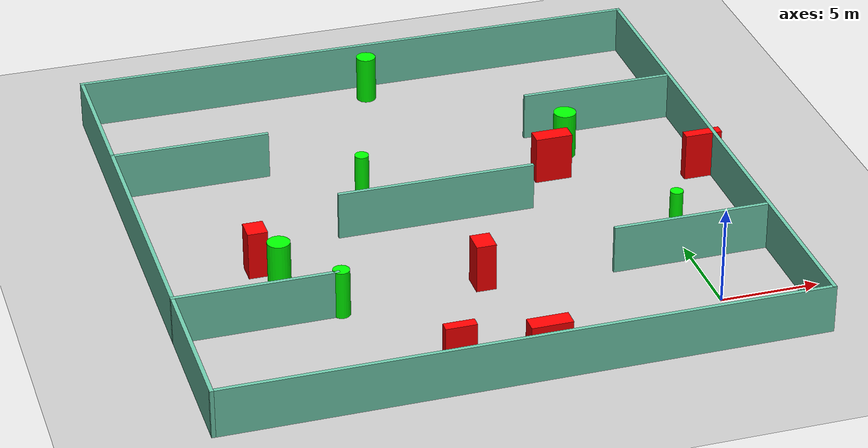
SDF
<sdf version="1.7">
 <world name="default">
  <light name="sun" type="directional">
   <pose>0 0 10 0 -0 0</pose>
   <diffuse>0.8 0.8 0.8 1</diffuse>
   <specular>0.2 0.2 0.2 1</specular>
   <attenuation>
    <range>1000</range>
    <constant>0.9</constant>
    <linear>0.01</linear>
    <quadratic>0.001</quadratic>
   </attenuation>
   <direction>-0.5 0.1 -0.9</direction>
   <spot><inner_angle>0</inner_angle><outer_angle>0</outer_angle><falloff>0</falloff></spot>
  </light>
  <model name="ground_plane">
   <static>1</static>
   <link name="link">
    <collision name="collision">
     <geometry><plane><normal>0 0 1</normal><size>100 100</size></plane></geometry>
     <surface>
      <contact><collide_bitmask>65535</collide_bitmask></contact>
      <friction><ode><mu>100</mu><mu2>50</mu2></ode></friction>
     </surface>
    </collision>
    <visual name="visual">
     <cast_shadows>0</cast_shadows>
     <geometry><plane><normal>0 0 1</normal><size>100 100</size></plane></geometry>
     <material>
      <script><uri>file://media/materials/scripts/gazebo.material</uri><name>Gazebo/Grey</name></script>
     </material>
    </visual>
   </link>
  </model>
  <gravity>0 0 -9.8</gravity>
  <magnetic_field>6e-06 2.3e-05 -4.2e-05</magnetic_field>
  <atmosphere type="adiabatic"/>
  <physics type="ode">
   <max_step_size>0.001</max_step_size>
   <real_time_factor>1</real_time_factor>
   <real_time_update_rate>1000</real_time_update_rate>
  </physics>
  <scene><ambient>0.4 0.4 0.4 1</ambient><background>0.7 0.7 0.7 1</background><shadows>1</shadows></scene>
  <spherical_coordinates>
   <surface_model>EARTH_WGS84</surface_model>
   <latitude_deg>0</latitude_deg>
   <longitude_deg>0</longitude_deg>
   <elevation>0</elevation>
   <heading_deg>0</heading_deg>
  </spherical_coordinates>
  <model name="my_base_walls">
   <link name="Wall_10">
    <collision name="Wall_10_Collision">
     <geometry><box><size>8.2 0.2 2.5</size></box></geometry>
     <pose>0 0 1.25 0 -0 0</pose>
    </collision>
    <visual name="Wall_10_Visual">
     <pose>0 0 1.25 0 -0 0</pose>
     <geometry><box><size>8.2 0.2 2.5</size></box></geometry>
     <material>
      <script><uri>file://media/materials/scripts/gazebo.material</uri><name>Gazebo/Grey</name></script>
      <ambient>0.435294 0.796078 0.67451 1</ambient>
     </material>
     <meta><layer>0</layer></meta>
    </visual>
    <pose>-11 -7 0 0 -0 0</pose>
   </link>
   <link name="Wall_12">
    <collision name="Wall_12_Collision">
     <geometry><box><size>8.2 0.2 2.5</size></box></geometry>
     <pose>0 0 1.25 0 -0 0</pose>
    </collision>
    <visual name="Wall_12_Visual">
     <pose>0 0 1.25 0 -0 0</pose>
     <geometry><box><size>8.2 0.2 2.5</size></box></geometry>
     <material>
      <script><uri>file://media/materials/scripts/gazebo.material</uri><name>Gazebo/Grey</name></script>
      <ambient>0.435294 0.796078 0.67451 1</ambient>
     </material>
     <meta><layer>0</layer></meta>
    </visual>
    <pose>-11 7 0 0 -0 0</pose>
   </link>
   <link name="Wall_14">
    <collision name="Wall_14_Collision">
     <geometry><box><size>8.2 0.2 2.5</size></box></geometry>
     <pose>0 0 1.25 0 -0 0</pose>
    </collision>
    <visual name="Wall_14_Visual">
     <pose>0 0 1.25 0 -0 0</pose>
     <geometry><box><size>8.2 0.2 2.5</size></box></geometry>
     <material>
      <script><uri>file://media/materials/scripts/gazebo.material</uri><name>Gazebo/Grey</name></script>
      <ambient>0.435294 0.796078 0.67451 1</ambient>
     </material>
     <meta><layer>0</layer></meta>
    </visual>
    <pose>11 7 0 0 -0 3.14159</pose>
   </link>
   <link name="Wall_16">
    <collision name="Wall_16_Collision">
     <geometry><box><size>10.2 0.2 2.5</size></box></geometry>
     <pose>0 0 1.25 0 -0 0</pose>
    </collision>
    <visual name="Wall_16_Visual">
     <pose>0 0 1.25 0 -0 0</pose>
     <geometry><box><size>10.2 0.2 2.5</size></box></geometry>
     <material>
      <script><uri>file://media/materials/scripts/gazebo.material</uri><name>Gazebo/Grey</name></script>
      <ambient>0.435294 0.796078 0.67451 1</ambient>
     </material>
     <meta><layer>0</layer></meta>
    </visual>
    <pose>0 0 0 0 -0 3.14159</pose>
   </link>
   <link name="Wall_2">
    <collision name="Wall_2_Collision">
     <geometry><box><size>30.2 0.2 2.5</size></box></geometry>
     <pose>0 0 1.25 0 -0 0</pose>
    </collision>
    <visual name="Wall_2_Visual">
     <pose>0 0 1.25 0 -0 0</pose>
     <geometry><box><size>30.2 0.2 2.5</size></box></geometry>
     <material>
      <script><uri>file://media/materials/scripts/gazebo.material</uri><name>Gazebo/Grey</name></script>
      <ambient>0.435294 0.796078 0.67451 1</ambient>
     </material>
     <meta><layer>0</layer></meta>
    </visual>
    <pose>0 -15 0 0 -0 3.14159</pose>
   </link>
   <link name="Wall_3">
    <collision name="Wall_3_Collision">
     <geometry><box><size>30.2 0.2 2.5</size></box></geometry>
     <pose>0 0 1.25 0 -0 0</pose>
    </collision>
    <visual name="Wall_3_Visual">
     <pose>0 0 1.25 0 -0 0</pose>
     <geometry><box><size>30.2 0.2 2.5</size></box></geometry>
     <material>
      <script><uri>file://media/materials/scripts/gazebo.material</uri><name>Gazebo/Grey</name></script>
      <ambient>0.435294 0.796078 0.67451 1</ambient>
     </material>
     <meta><layer>0</layer></meta>
    </visual>
    <pose>-15 0 0 0 -0 1.5708</pose>
   </link>
   <link name="Wall_4">
    <collision name="Wall_4_Collision">
     <geometry><box><size>30.2 0.2 2.5</size></box></geometry>
     <pose>0 0 1.25 0 -0 0</pose>
    </collision>
    <visual name="Wall_4_Visual">
     <pose>0 0 1.25 0 -0 0</pose>
     <geometry><box><size>30.2 0.2 2.5</size></box></geometry>
     <material>
      <script><uri>file://media/materials/scripts/gazebo.material</uri><name>Gazebo/Grey</name></script>
      <ambient>0.435294 0.796078 0.67451 1</ambient>
     </material>
     <meta><layer>0</layer></meta>
    </visual>
    <pose>0 15 0 0 -0 0</pose>
   </link>
   <link name="Wall_6">
    <collision name="Wall_6_Collision">
     <geometry><box><size>30.2 0.2 2.5</size></box></geometry>
     <pose>0 0 1.25 0 -0 0</pose>
    </collision>
    <visual name="Wall_6_Visual">
     <pose>0 0 1.25 0 -0 0</pose>
     <geometry><box><size>30.2 0.2 2.5</size></box></geometry>
     <material>
      <script><uri>file://media/materials/scripts/gazebo.material</uri><name>Gazebo/Grey</name></script>
      <ambient>0.435294 0.796078 0.67451 1</ambient>
     </material>
     <meta><layer>0</layer></meta>
    </visual>
    <pose>15 0 0 0 -0 1.5708</pose>
   </link>
   <link name="Wall_8">
    <collision name="Wall_8_Collision">
     <geometry><box><size>8.2 0.2 2.5</size></box></geometry>
     <pose>0 0 1.25 0 -0 0</pose>
    </collision>
    <visual name="Wall_8_Visual">
     <pose>0 0 1.25 0 -0 0</pose>
     <geometry><box><size>8.2 0.2 2.5</size></box></geometry>
     <material>
      <script><uri>file://media/materials/scripts/gazebo.material</uri><name>Gazebo/Grey</name></script>
      <ambient>0.435294 0.796078 0.67451 1</ambient>
     </material>
     <meta><layer>0</layer></meta>
    </visual>
    <pose>11 -7 0 0 -0 3.14159</pose>
   </link>
   <static>1</static>
   <pose>-11 11 0 0 -0 0</pose>
  </model>
  <model name="cylinder1">
   <static>1</static>
   <link name="link">
    <inertial>
     <mass>1</mass>
     <inertia><ixx>0.5</ixx><ixy>0</ixy><ixz>0</ixz><iyy>0.5</iyy><iyz>0</iyz><izz>1</izz></inertia>
    </inertial>
    <collision name="collision">
     <geometry><cylinder><radius>0.5149441913942533</radius><length>2.5</length></cylinder></geometry>
    </collision>
    <visual name="visual">
     <geometry><cylinder><radius>0.5149441913942533</radius><length>2.5</length></cylinder></geometry>
     <material>
      <ambient>0 1 0 1</ambient>
      <diffuse>0 1 0 1</diffuse>
      <specular>0.1 0.1 0.1 1</specular>
      <emissive>0 0 0 0</emissive>
     </material>
    </visual>
   </link>
   <pose>-10.852365284410126 24.608479960002093 1.25 0 0 0</pose>
  </model>
  <model name="cylinder2">
   <static>1</static>
   <link name="link">
    <inertial>
     <mass>1</mass>
     <inertia><ixx>0.5</ixx><ixy>0</ixy><ixz>0</ixz><iyy>0.5</iyy><iyz>0</iyz><izz>1</izz></inertia>
    </inertial>
    <collision name="collision">
     <geometry><cylinder><radius>0.5758950399968564</radius><length>2.5</length></cylinder></geometry>
    </collision>
    <visual name="visual">
     <geometry><cylinder><radius>0.5758950399968564</radius><length>2.5</length></cylinder></geometry>
     <material>
      <ambient>0 1 0 1</ambient>
      <diffuse>0 1 0 1</diffuse>
      <specular>0.1 0.1 0.1 1</specular>
      <emissive>0 0 0 0</emissive>
     </material>
    </visual>
   </link>
   <pose>-20.023342933350715 7.436601176909075 1.25 0 0 0</pose>
  </model>
  <model name="cylinder3">
   <static>1</static>
   <link name="link">
    <inertial>
     <mass>1</mass>
     <inertia><ixx>0.5</ixx><ixy>0</ixy><ixz>0</ixz><iyy>0.5</iyy><iyz>0</iyz><izz>1</izz></inertia>
    </inertial>
    <collision name="collision">
     <geometry><cylinder><radius>0.5918070931642253</radius><length>2.5</length></cylinder></geometry>
    </collision>
    <visual name="visual">
     <geometry><cylinder><radius>0.5918070931642253</radius><length>2.5</length></cylinder></geometry>
     <material>
      <ambient>0 1 0 1</ambient>
      <diffuse>0 1 0 1</diffuse>
      <specular>0.1 0.1 0.1 1</specular>
      <emissive>0 0 0 0</emissive>
     </material>
    </visual>
   </link>
   <pose>-2.626616828167734 15.695219130218575 1.25 0 0 0</pose>
  </model>
  <model name="cylinder4">
   <static>1</static>
   <link name="link">
    <inertial>
     <mass>1</mass>
     <inertia><ixx>0.5</ixx><ixy>0</ixy><ixz>0</ixz><iyy>0.5</iyy><iyz>0</iyz><izz>1</izz></inertia>
    </inertial>
    <collision name="collision">
     <geometry><cylinder><radius>0.3322627163201286</radius><length>2.5</length></cylinder></geometry>
    </collision>
    <visual name="visual">
     <geometry><cylinder><radius>0.3322627163201286</radius><length>2.5</length></cylinder></geometry>
     <material>
      <ambient>0 1 0 1</ambient>
      <diffuse>0 1 0 1</diffuse>
      <specular>0.1 0.1 0.1 1</specular>
      <emissive>0 0 0 0</emissive>
     </material>
    </visual>
   </link>
   <pose>0.052504839281908744 6.432057553917549 1.25 0 0 0</pose>
  </model>
  <model name="cylinder5">
   <static>1</static>
   <link name="link">
    <inertial>
     <mass>1</mass>
     <inertia><ixx>0.5</ixx><ixy>0</ixy><ixz>0</ixz><iyy>0.5</iyy><iyz>0</iyz><izz>1</izz></inertia>
    </inertial>
    <collision name="collision">
     <geometry><cylinder><radius>0.36430596596120884</radius><length>2.5</length></cylinder></geometry>
    </collision>
    <visual name="visual">
     <geometry><cylinder><radius>0.36430596596120884</radius><length>2.5</length></cylinder></geometry>
     <material>
      <ambient>0 1 0 1</ambient>
      <diffuse>0 1 0 1</diffuse>
      <specular>0.1 0.1 0.1 1</specular>
      <emissive>0 0 0 0</emissive>
     </material>
    </visual>
   </link>
   <pose>-13.923235738701687 14.418443394859352 1.25 0 0 0</pose>
  </model>
  <model name="cylinder6">
   <static>1</static>
   <link name="link">
    <inertial>
     <mass>1</mass>
     <inertia><ixx>0.5</ixx><ixy>0</ixy><ixz>0</ixz><iyy>0.5</iyy><iyz>0</iyz><izz>1</izz></inertia>
    </inertial>
    <collision name="collision">
     <geometry><cylinder><radius>0.42177893510185505</radius><length>2.5</length></cylinder></geometry>
    </collision>
    <visual name="visual">
     <geometry><cylinder><radius>0.42177893510185505</radius><length>2.5</length></cylinder></geometry>
     <material>
      <ambient>0 1 0 1</ambient>
      <diffuse>0 1 0 1</diffuse>
      <specular>0.1 0.1 0.1 1</specular>
      <emissive>0 0 0 0</emissive>
     </material>
    </visual>
   </link>
   <pose>-17.79515647602537 4.123942486579939 1.25 0 0 0</pose>
  </model>
  <model name="box1">
   <static>1</static>
   <link name="link">
    <inertial>
     <mass>1</mass>
     <inertia><ixx>0.083</ixx><ixy>0</ixy><ixz>0</ixz><iyy>0.083</iyy><iyz>0</iyz><izz>0.083</izz></inertia>
    </inertial>
    <collision name="collision">
     <geometry><box><size>1.943555086869031 0.5436264949703727 2.5</size></box></geometry>
    </collision>
    <visual name="visual">
     <geometry><box><size>1.943555086869031 0.5436264949703727 2.5</size></box></geometry>
     <material>
      <ambient>1 0 0 1</ambient>
      <diffuse>1 0 0 1</diffuse>
      <specular>0.1 0.1 0.1 1</specular>
      <emissive>0 0 0 0</emissive>
     </material>
    </visual>
    <sensor name="my_contact" type="contact">
     <contact><collision>box_collision</collision><topic>__default_topic__</topic></contact>
    </sensor>
   </link>
   <pose>3.430697978397397 11.661052967573665 1.25 0 0 0</pose>
  </model>
  <model name="box2">
   <static>1</static>
   <link name="link">
    <inertial>
     <mass>1</mass>
     <inertia><ixx>0.083</ixx><ixy>0</ixy><ixz>0</ixz><iyy>0.083</iyy><iyz>0</iyz><izz>0.083</izz></inertia>
    </inertial>
    <collision name="collision">
     <geometry><box><size>1.5450790923925963 0.5158192000368754 2.5</size></box></geometry>
    </collision>
    <visual name="visual">
     <geometry><box><size>1.5450790923925963 0.5158192000368754 2.5</size></box></geometry>
     <material>
      <ambient>1 0 0 1</ambient>
      <diffuse>1 0 0 1</diffuse>
      <specular>0.1 0.1 0.1 1</specular>
      <emissive>0 0 0 0</emissive>
     </material>
    </visual>
    <sensor name="my_contact" type="contact">
     <contact><collision>box_collision</collision><topic>__default_topic__</topic></contact>
    </sensor>
   </link>
   <pose>-13.807216652590753 -2.0526805858240933 1.25 0 0 0</pose>
  </model>
  <model name="box3">
   <static>1</static>
   <link name="link">
    <inertial>
     <mass>1</mass>
     <inertia><ixx>0.083</ixx><ixy>0</ixy><ixz>0</ixz><iyy>0.083</iyy><iyz>0</iyz><izz>0.083</izz></inertia>
    </inertial>
    <collision name="collision">
     <geometry><box><size>1.0152504613200182 1.109711531602768 2.5</size></box></geometry>
    </collision>
    <visual name="visual">
     <geometry><box><size>1.0152504613200182 1.109711531602768 2.5</size></box></geometry>
     <material>
      <ambient>1 0 0 1</ambient>
      <diffuse>1 0 0 1</diffuse>
      <specular>0.1 0.1 0.1 1</specular>
      <emissive>0 0 0 0</emissive>
     </material>
    </visual>
    <sensor name="my_contact" type="contact">
     <contact><collision>box_collision</collision><topic>__default_topic__</topic></contact>
    </sensor>
   </link>
   <pose>-20.796895946366533 9.022656550490069 1.25 0 0 0</pose>
  </model>
  <model name="box4">
   <static>1</static>
   <link name="link">
    <inertial>
     <mass>1</mass>
     <inertia><ixx>0.083</ixx><ixy>0</ixy><ixz>0</ixz><iyy>0.083</iyy><iyz>0</iyz><izz>0.083</izz></inertia>
    </inertial>
    <collision name="collision">
     <geometry><box><size>2.054546936159676 0.8474498721121932 2.5</size></box></geometry>
    </collision>
    <visual name="visual">
     <geometry><box><size>2.054546936159676 0.8474498721121932 2.5</size></box></geometry>
     <material>
      <ambient>1 0 0 1</ambient>
      <diffuse>1 0 0 1</diffuse>
      <specular>0.1 0.1 0.1 1</specular>
      <emissive>0 0 0 0</emissive>
     </material>
    </visual>
    <sensor name="my_contact" type="contact">
     <contact><collision>box_collision</collision><topic>__default_topic__</topic></contact>
    </sensor>
   </link>
   <pose>-9.74698198091682 -2.95904282884335 1.25 0 0 0</pose>
  </model>
  <model name="box5">
   <static>1</static>
   <link name="link">
    <inertial>
     <mass>1</mass>
     <inertia><ixx>0.083</ixx><ixy>0</ixy><ixz>0</ixz><iyy>0.083</iyy><iyz>0</iyz><izz>0.083</izz></inertia>
    </inertial>
    <collision name="collision">
     <geometry><box><size>1.0063559985465098 1.1853503177276938 2.5</size></box></geometry>
    </collision>
    <visual name="visual">
     <geometry><box><size>1.0063559985465098 1.1853503177276938 2.5</size></box></geometry>
     <material>
      <ambient>1 0 0 1</ambient>
      <diffuse>1 0 0 1</diffuse>
      <specular>0.1 0.1 0.1 1</specular>
      <emissive>0 0 0 0</emissive>
     </material>
    </visual>
    <sensor name="my_contact" type="contact">
     <contact><collision>box_collision</collision><topic>__default_topic__</topic></contact>
    </sensor>
   </link>
   <pose>-10.557568739377546 4.7156685299534296 1.25 0 0 0</pose>
  </model>
  <model name="box6">
   <static>1</static>
   <link name="link">
    <inertial>
     <mass>1</mass>
     <inertia><ixx>0.083</ixx><ixy>0</ixy><ixz>0</ixz><iyy>0.083</iyy><iyz>0</iyz><izz>0.083</izz></inertia>
    </inertial>
    <collision name="collision">
     <geometry><box><size>1.9250478854123578 0.8570963058347061 2.5</size></box></geometry>
    </collision>
    <visual name="visual">
     <geometry><box><size>1.9250478854123578 0.8570963058347061 2.5</size></box></geometry>
     <material>
      <ambient>1 0 0 1</ambient>
      <diffuse>1 0 0 1</diffuse>
      <specular>0.1 0.1 0.1 1</specular>
      <emissive>0 0 0 0</emissive>
     </material>
    </visual>
    <sensor name="my_contact" type="contact">
     <contact><collision>box_collision</collision><topic>__default_topic__</topic></contact>
    </sensor>
   </link>
   <pose>-4.018129515235998 13.695063422939285 1.25 0 0 0</pose>
  </model>
 </world>
</sdf>
